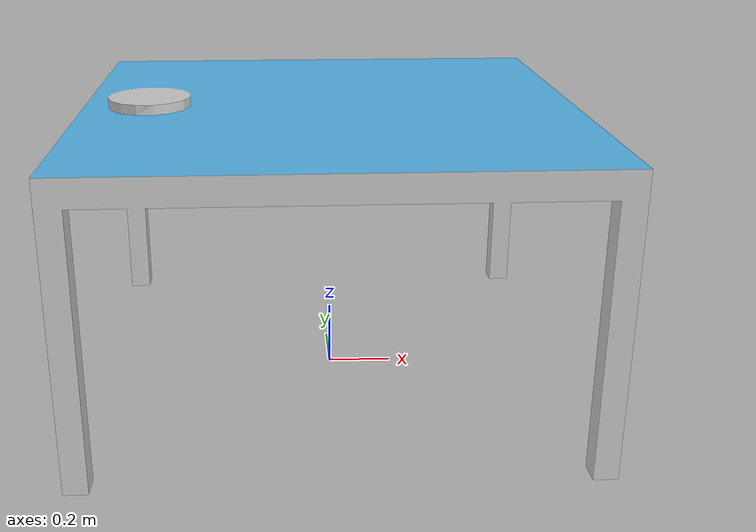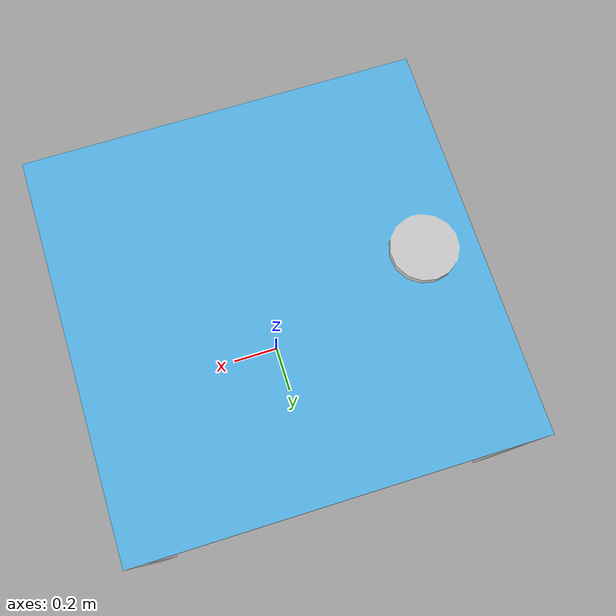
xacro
<?xml version="1.0" encoding="utf-8"?>
<robot name="table" xmlns:xacro="http://www.ros.org/wiki/xacro">

  <link name="world" />

  <joint name="table_fix_joint" type="fixed">
    <origin xyz = "0 0 0.8" rpy="0 0 0 "/>
    <parent link = "world"/>
    <child link = "table"/>
  </joint>

  <link name="table">
    <inertial>
      <origin
        xyz="-0.0041082 1.07711660138806E-16 0.0054166"
        rpy="0 0 0" />
      <mass
        value="197.15" />
      <inertia
        ixx="45.515"
        ixy="1.87435573118393E-14"
        ixz="0.072557"
        iyy="45.957"
        iyz="6.98966251528785E-15"
        izz="83.998" />
    </inertial>
    <visual>
      <origin
        xyz="0 0 0"
        rpy="1.5707963267949 0 0" />
      <geometry>
        <mesh
          filename="package://cai_env/meshes/table_blend.dae" />
      </geometry>

    </visual>
    <collision>
      <origin
        xyz="0 0 0"
        rpy="1.5707963267949 0 0" />
      <geometry>
        <mesh
          filename="package://cai_env/meshes/table_blend.dae" />
      </geometry>
    </collision>

    <gazebo reference="table">

      <gravity>bool</gravity>
      <maxVel>100</maxVel>
      <kd>1</kd>
      <maxContacts>20</maxContacts>
      <mu2>1000000000000</mu2>
      <selfCollide>10</selfCollide>
      <mu1>1000000000000</mu1>
      <minDepth>2</minDepth>
      <kp>1000000000000.0</kp>

    </gazebo>

  </link>

</robot>
